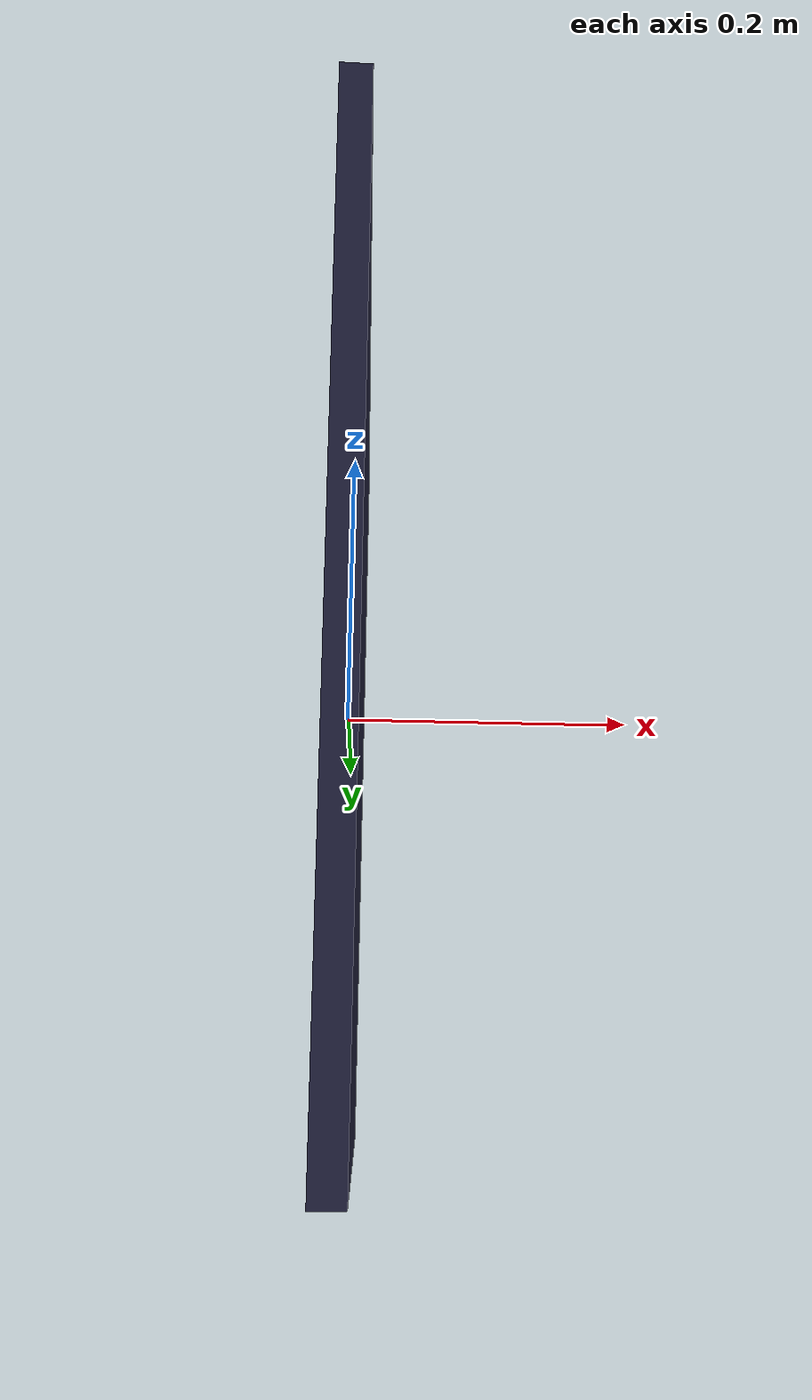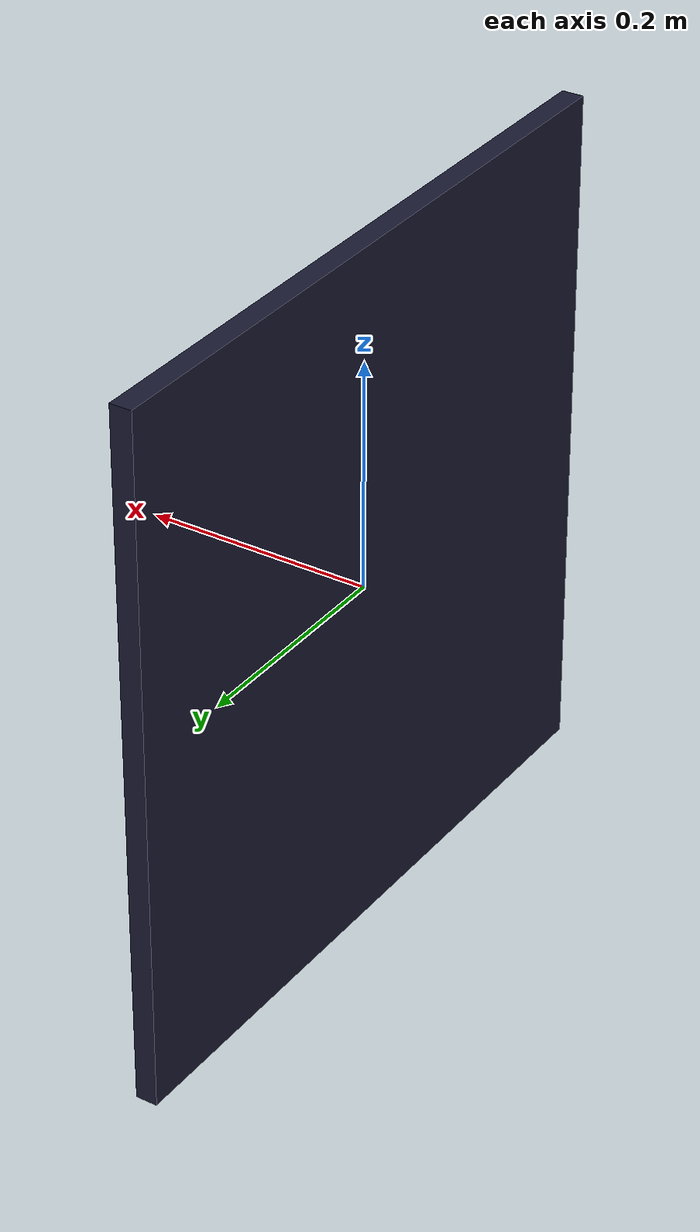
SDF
<?xml version="1.0"?>
<sdf version="1.6">
  <model name="plus_sign">
    <static>true</static>
    <link name="base_link">
      <collision name="sign">
        <geometry>
          <box>
            <size>0.019 0.6096 0.6096</size>
          </box>
        </geometry>
      </collision>
      <visual name="sign">

        <geometry>
          <box>
            <size>0.019 0.6096 0.6096</size>
          </box>
        </geometry>

        <material>
          <ambient>0.1 0.1 0.1 1</ambient>
          <diffuse>0.1 0.1 0.2 1</diffuse>
          <specular>0 0 0 0</specular>
          <emissive>0 0 0 1</emissive>
        </material>
      </visual>
    </link>
  </model>
</sdf>
